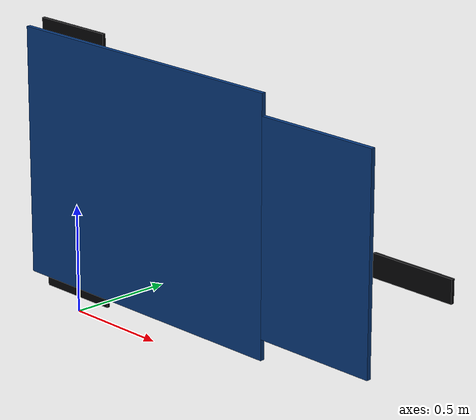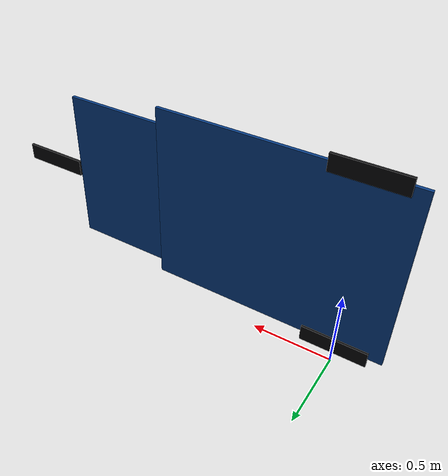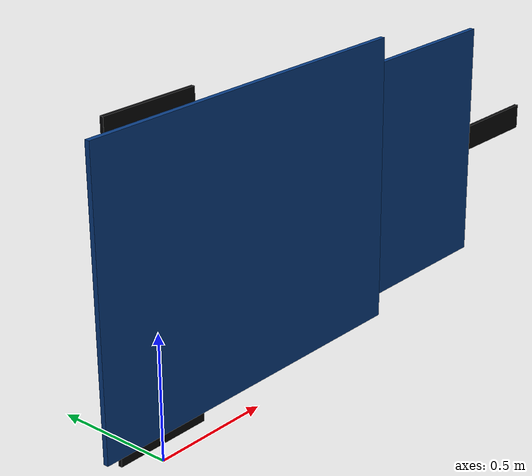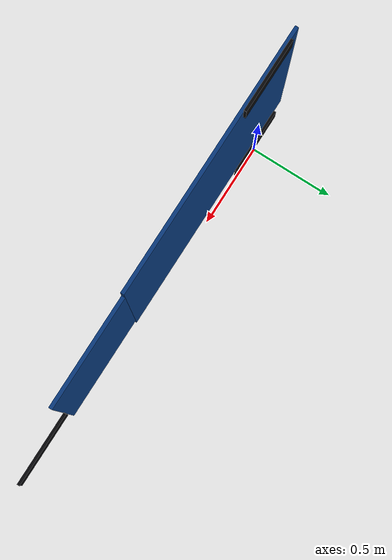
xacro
<?xml version="1.0"?>
<robot name="etrike_top_width_proof">
  <!-- Flat plan-view validation aid only; not part of the production URDF. -->
  <material name="body_blue"><color rgba="0.035 0.235 0.510 1"/></material>
  <material name="tire_black"><color rgba="0.025 0.025 0.030 1"/></material>

  <link name="plan_view">
    <!-- Tires are behind the blue body plane. The visible outer strips are
         0.051 m each: exactly half of the 0.102 m tire width. -->
    <visual name="rear_left_tire_plan">
      <origin xyz="0 0 1.275" rpy="0 0 0"/>
      <geometry><box size="0.406 0.015 0.102"/></geometry>
      <material name="tire_black"/>
    </visual>
    <visual name="rear_right_tire_plan">
      <origin xyz="0 0 0.125" rpy="0 0 0"/>
      <geometry><box size="0.406 0.015 0.102"/></geometry>
      <material name="tire_black"/>
    </visual>
    <visual name="front_tire_plan">
      <origin xyz="2.000 0 0.700" rpy="0 0 0"/>
      <geometry><box size="0.406 0.015 0.102"/></geometry>
      <material name="tire_black"/>
    </visual>

    <visual name="main_body_plan">
      <origin xyz="0.4575 -0.020 0.700" rpy="0 0 0"/>
      <geometry><box size="1.485 0.020 1.150"/></geometry>
      <material name="body_blue"/>
    </visual>
    <visual name="front_body_plan">
      <origin xyz="1.500 -0.020 0.700" rpy="0 0 0"/>
      <geometry><box size="0.600 0.020 0.960"/></geometry>
      <material name="body_blue"/>
    </visual>
  </link>
</robot>
